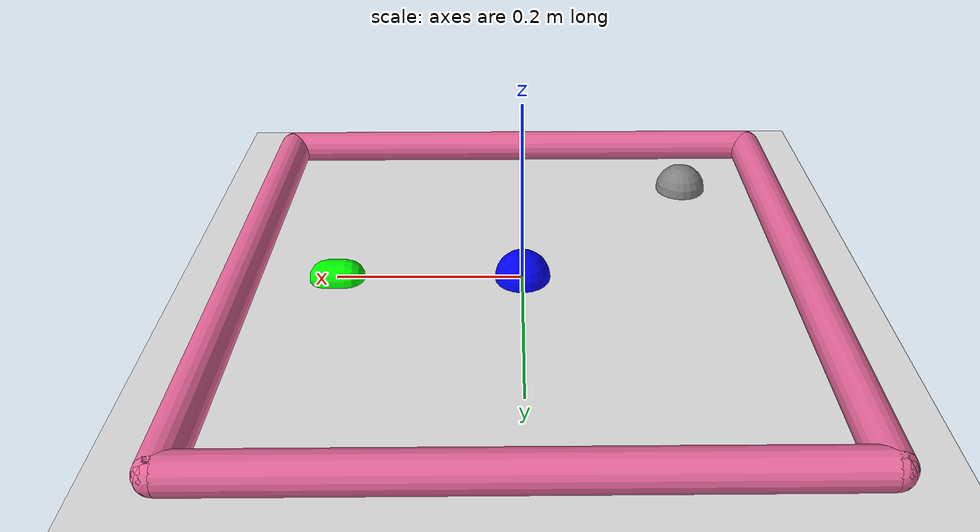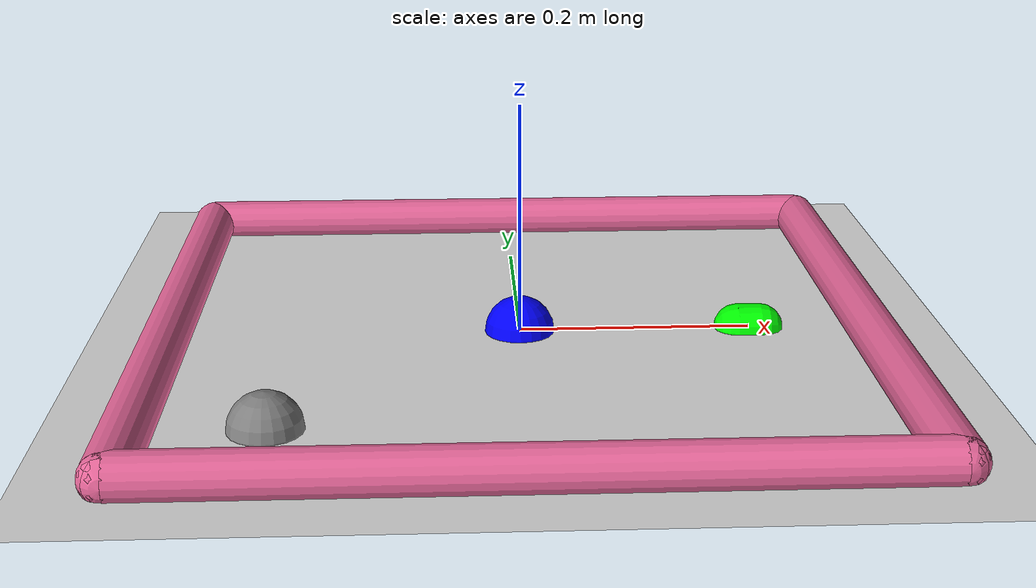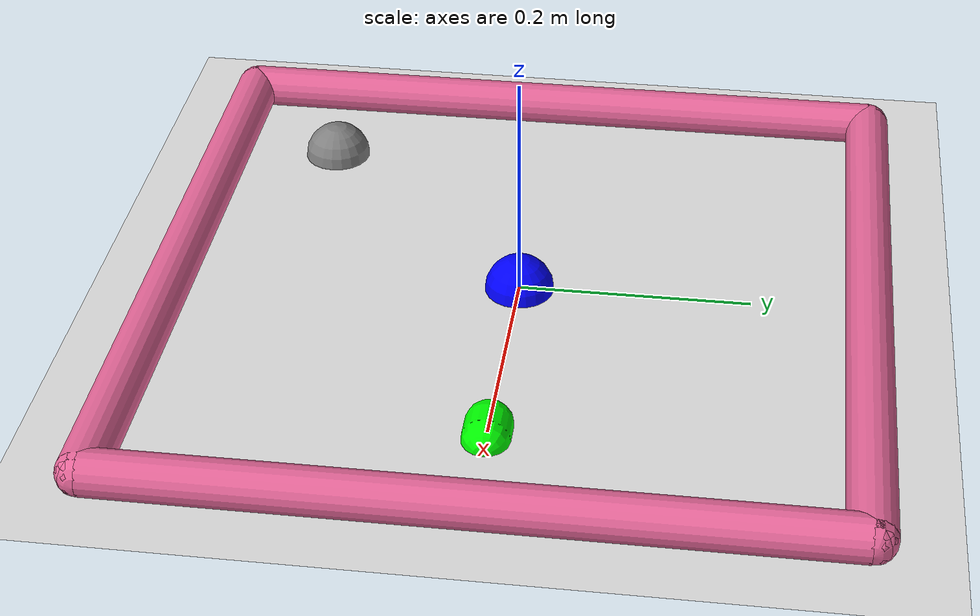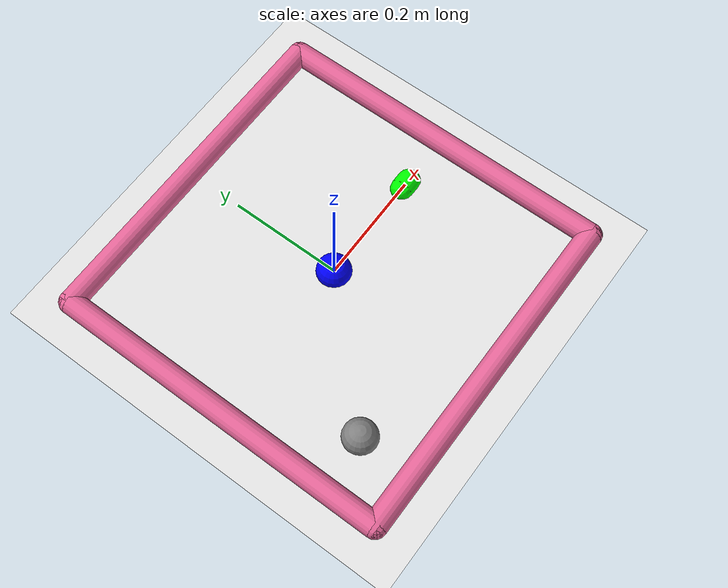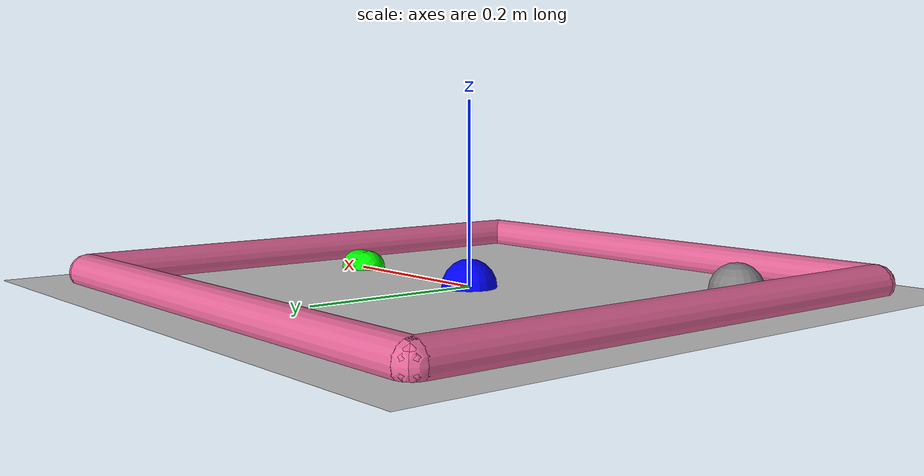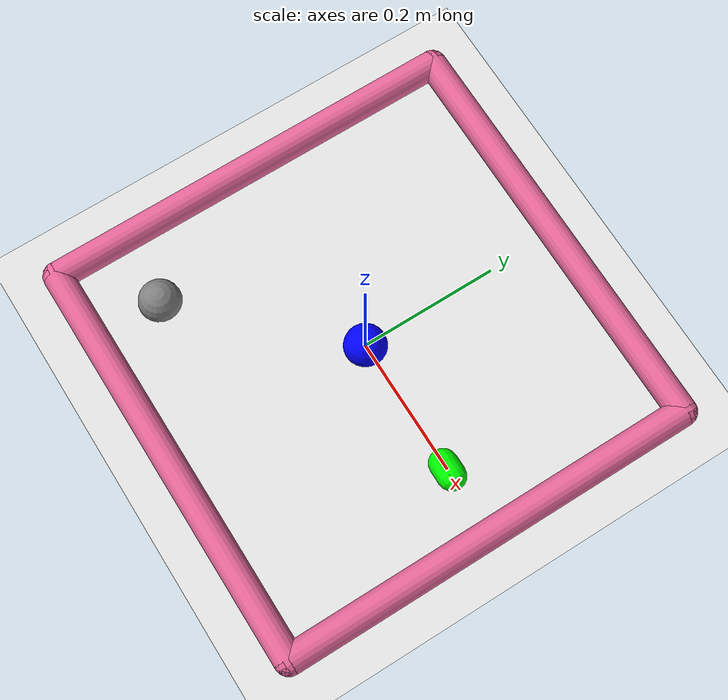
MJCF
<mujoco model="linearparticle">
    <compiler inertiafromgeom="true" angle="radian" coordinate="local" />
    <option timestep="0.01" gravity="0 0 0" iterations="20" integrator="Euler" />
    <default>
        <joint limited="false" damping="1" />
        <geom contype="2" conaffinity="1" condim="6" friction=".5 .1 .1" density="1000" margin="0.002" />
    </default>

    <worldbody>
      <!-- Arena -->
      <geom conaffinity="0" contype="0" name="ground" pos="0 0 0" rgba="0.9 0.9 0.9 1" size="1 1 10" type="plane"/>
      <geom conaffinity="1" fromto="-.3 -.3 .01 .3 -.3 .01" name="sideS" rgba="0.9 0.4 0.6 1" size=".02" type="capsule"/>
      <geom conaffinity="1" fromto=" .3 -.3 .01 .3  .3 .01" name="sideE" rgba="0.9 0.4 0.6 1" size=".02" type="capsule"/>
      <geom conaffinity="1" fromto="-.3  .3 .01 .3  .3 .01" name="sideN" rgba="0.9 0.4 0.6 1" size=".02" type="capsule"/>
      <geom conaffinity="1" fromto="-.3 -.3 .01 -.3 .3 .01" name="sideW" rgba="0.9 0.4 0.6 1" size=".02" type="capsule"/>

      <!-- Manipulator -->
      <body name="manipulator" pos="0 0 0">
        <geom name="manipulator_geom" type="sphere" size="0.03" rgba="0 0 1 1" contype="1" conaffinity="1"/>
        <site name="manipulator_site" pos="0 0 0" size="0.01" />
        <joint name="ball_x" type="slide" pos="0 0 0" axis="1 0 0" />
        <joint name="ball_y" type="slide" pos="0 0 0" axis="0 1 0" />
      </body>

      <!-- Target -->
      <body name="target" pos="0.2 0 0">
        <geom name="target_geom" type="capsule" fromto="-0.01 0 0 0.01 0 0" size="0.02" rgba="0 1 0 1" contype="2" conaffinity="2"/>
      </body>

      <!-- Body which is moved -->
      <body name="object" pos="-.2 -.2 0">
        <geom name="object_geom" type="sphere" size="0.03" conaffinity="1" contype="1"/>
        <joint name="object_x" type="slide" pos="0 0 0" axis="1 0 0" limited="true" range="-1 1" damping="5"/>
        <joint name="object_y" type="slide" pos="0 0 0" axis="0 1 0" limited="true" range="-1 1" damping="5" />
      </body>
    </worldbody>

    <actuator>
        <motor joint="ball_x" ctrlrange="-1.0 1.0" ctrllimited="true"/>
        <motor joint="ball_y" ctrlrange="-1.0 1.0" ctrllimited="true"/>
    </actuator>
</mujoco>
